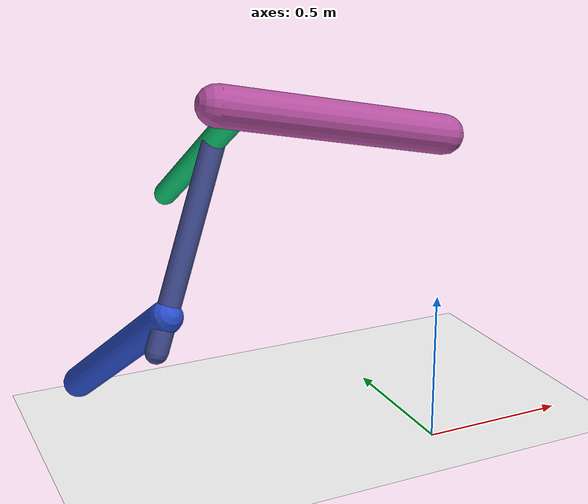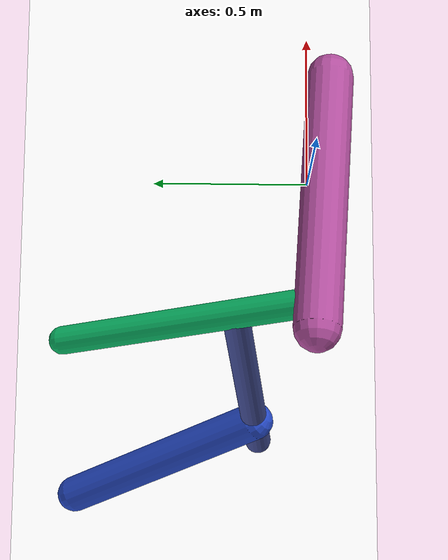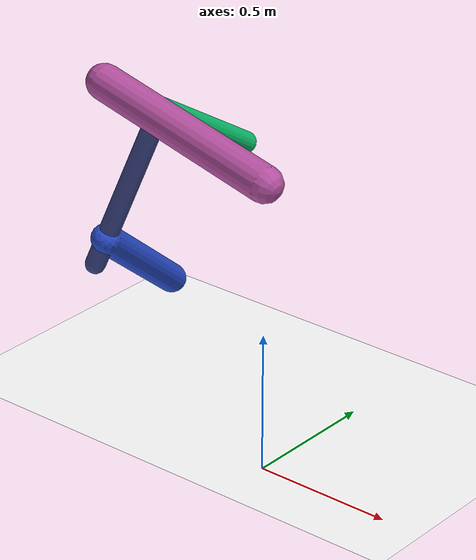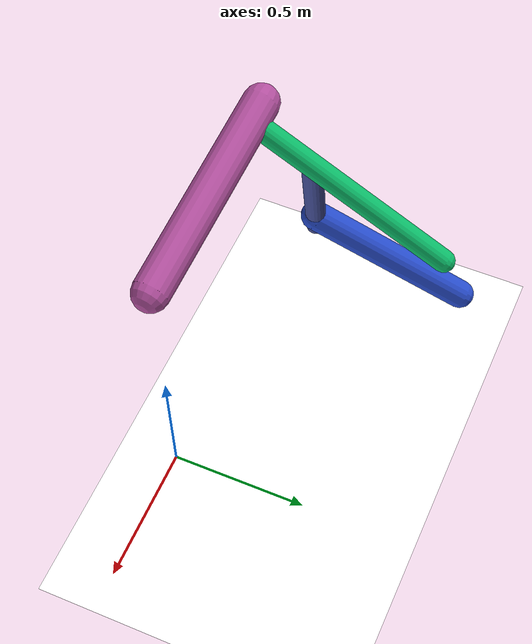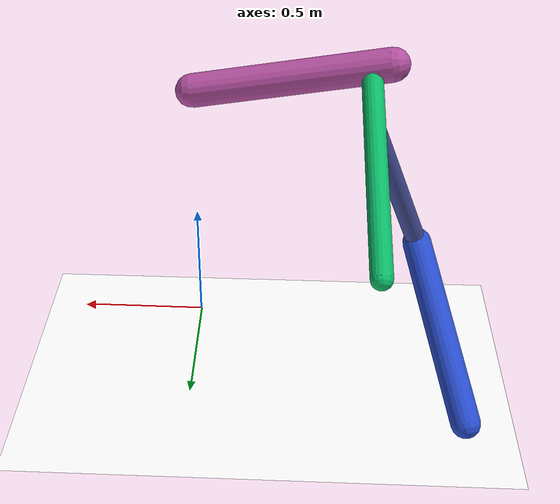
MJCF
<mujoco model="morphology">
  <option timestep="0.01"/>
  <default>
    <default class="/"/>
    <default class="0/"/>
    <default class="0/1/"/>
    <default class="0/1/2/"/>
    <default class="0/1/2/3/"/>
  </default>
  <asset>
    <texture name="texplane" type="2d" builtin="checker" rgb1="0.10000000000000001 0.20000000000000001 0.29999999999999999" rgb2="0.20000000000000001 0.29999999999999999 0.40000000000000002" width="300" height="300"/>
    <material name="MatPlane" class="/" texture="texplane" texrepeat="20 20" specular="1" shininess="1" reflectance="0.5"/>
  </asset>
  <worldbody>
    <light name="//unnamed_light_0" class="/" directional="true" pos="0 0 1.5" dir="0 0 -1.3" cutoff="100" exponent="1" diffuse="1 1 1" specular="0.10000000000000001 0.10000000000000001 0.10000000000000001"/>
    <geom name="ground" class="/" type="plane" size="15 15 0.5" material="MatPlane" rgba="1 1 1 1"/>
    <site name="body" class="/" size="9.9999999999999995e-07 9.9999999999999995e-07 9.9999999999999995e-07" pos="0 0 1.0392065405845643"/>
    <body pos="0 0 1.0392065405845643" name="0/">
      <freejoint name="0/"/>
      <geom name="0/geom" class="0/" type="capsule" contype="1" conaffinity="1" condim="3" size="0.062937394482880465" rgba="0.71059615495107431 0.31756388889779408 0.63156921698371304 1" friction="0.59999999999999998 0.10000000000000001 0.10000000000000001" fromto="0 0 0 -0.72065617817479088 0.048356256884083515 0.14141680105570353"/>
      <site name="0/end0" class="0/" size="0.0050000000000000001" pos="-0.72065617817479088 0.048356256884083515 0.14141680105570353"/>
      <site name="0/attach1" class="0/" size="9.9999999999999995e-07 9.9999999999999995e-07 9.9999999999999995e-07" pos="-0.64774729764503058 0.043464048001676726 0.12710964465390218"/>
      <body pos="-0.64774729764503058 0.043464048001676726 0.12710964465390218" name="0/1/">
        <joint name="0/1/joint/" class="0/" type="hinge" axis="0 0 1" limited="true" range="-67.941810640813969 67.941810640813969"/>
        <geom name="0/1/geom" class="0/1/" type="capsule" contype="1" conaffinity="1" condim="3" size="0.039313079964015486" rgba="0.043708816408735029 0.74064899837644493 0.41461269933402234 1" friction="0.59999999999999998 0.10000000000000001 0.10000000000000001" fromto="0 0 0 -0.02475283608382739 0.67981698466391682 -0.41675732246795405"/>
        <site name="0/1/end1" class="0/1/" size="0.0050000000000000001" pos="-0.02475283608382739 0.67981698466391682 -0.41675732246795405"/>
        <site name="0/1/attach2" class="0/1/" size="9.9999999999999995e-07 9.9999999999999995e-07 9.9999999999999995e-07" pos="-0.0076309621055662266 0.2095783138191617 -0.1284806041699629"/>
        <body pos="-0.0076309621055662266 0.2095783138191617 -0.1284806041699629" name="0/1/2/">
          <joint name="0/1/2/joint/" class="0/1/" type="hinge" axis="-0.99951854038590171 -0.026452181226364224 0.016216335381480207" limited="true" range="-58.059624322841621 58.059624322841621"/>
          <geom name="0/1/2/geom" class="0/1/2/" type="capsule" contype="1" conaffinity="1" condim="3" size="0.037168607587289001" rgba="0.25164188035792812 0.29521337841783002 0.57128209816867792 1" friction="0.59999999999999998 0.10000000000000001 0.10000000000000001" fromto="0 0 0 -0.24065517494083299 -0.080223430511817018 -0.62890950886079844"/>
          <site name="0/1/2/end2" class="0/1/2/" size="0.0050000000000000001" pos="-0.24065517494083299 -0.080223430511817018 -0.62890950886079844"/>
          <site name="0/1/2/attach3" class="0/1/2/" size="9.9999999999999995e-07 9.9999999999999995e-07 9.9999999999999995e-07" pos="-0.20060212574838523 -0.066871575479126727 -0.52423798662076004"/>
          <body pos="-0.20060212574838523 -0.066871575479126727 -0.52423798662076004" name="0/1/2/3/">
            <joint name="0/1/2/3/joint/" class="0/1/2/" type="hinge" axis="0.93491421117562701 -0.044903702316857558 -0.35202141307041934" limited="true" range="-30.44120645796994 30.44120645796994"/>
            <geom name="0/1/2/3/geom" class="0/1/2/3/" type="capsule" contype="1" conaffinity="1" condim="3" size="0.054041264214717513" rgba="0.16042128797600419 0.3074559079561523 0.81794218266325081 1" friction="0.59999999999999998 0.10000000000000001 0.10000000000000001" fromto="0 0 0 -0.16677773164353438 0.53634439884889584 -0.41359760407847723"/>
            <site name="0/1/2/3/end3" class="0/1/2/3/" size="0.0050000000000000001" pos="-0.16677773164353438 0.53634439884889584 -0.41359760407847723"/>
          </body>
        </body>
      </body>
      <camera name="0/iso" class="0/" mode="trackcom" pos="-2.2999999999999998 -2.2999999999999998 1" xyaxes="0.45000000000000001 -0.45000000000000001 0 0.29999999999999999 0.14999999999999999 0.93999999999999995"/>
    </body>
  </worldbody>
  <actuator>
    <motor name="0/1/motor" class="0/1/" ctrllimited="true" ctrlrange="-1 1" gear="87" joint="0/1/joint/"/>
    <motor name="0/1/2/motor" class="0/1/2/" ctrllimited="true" ctrlrange="-1 1" gear="75" joint="0/1/2/joint/"/>
    <motor name="0/1/2/3/motor" class="0/1/2/3/" ctrllimited="true" ctrlrange="-1 1" gear="86" joint="0/1/2/3/joint/"/>
  </actuator>
  <sensor>
    <subtreelinvel name="velocity" body="0/"/>
  </sensor>
</mujoco>
